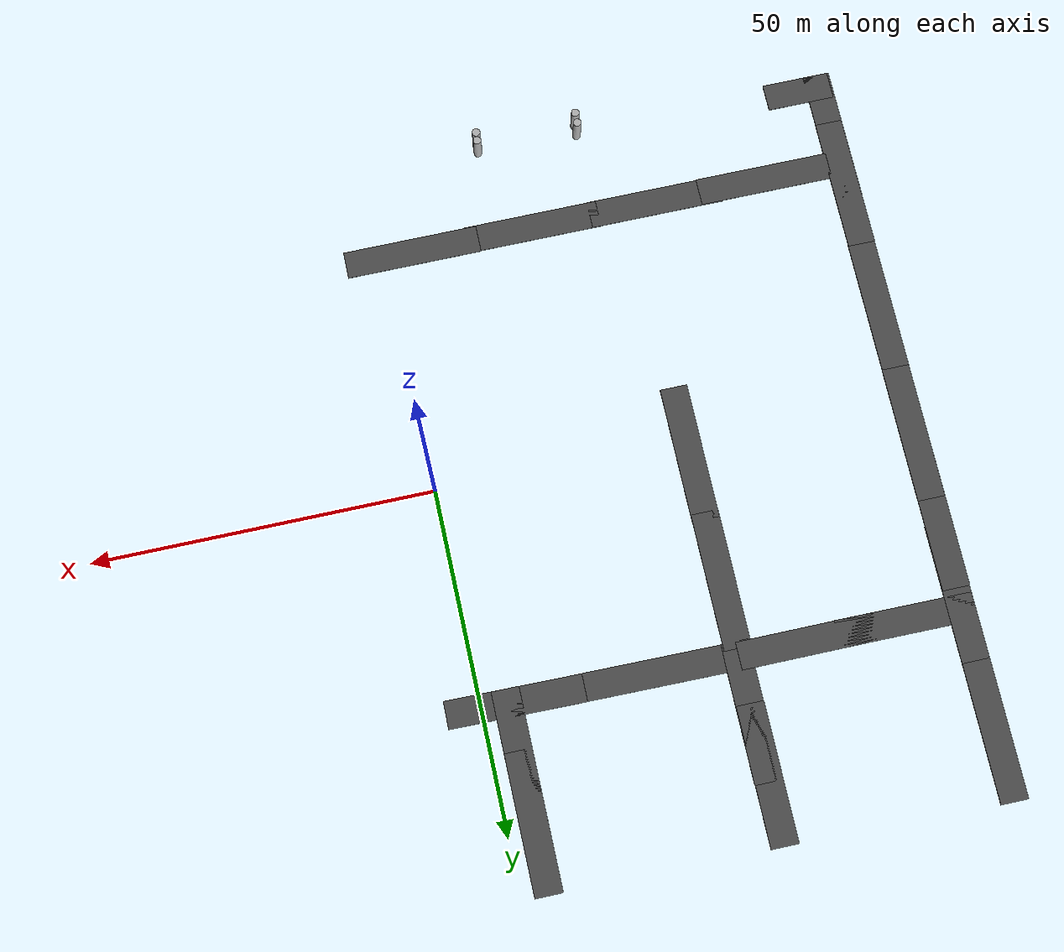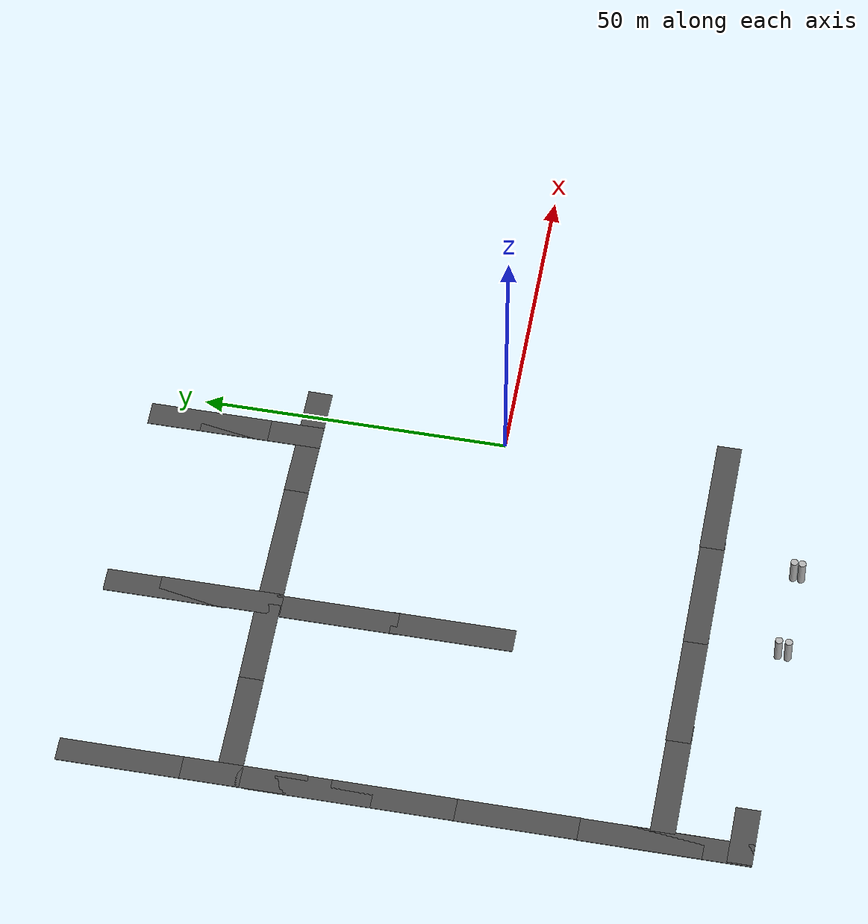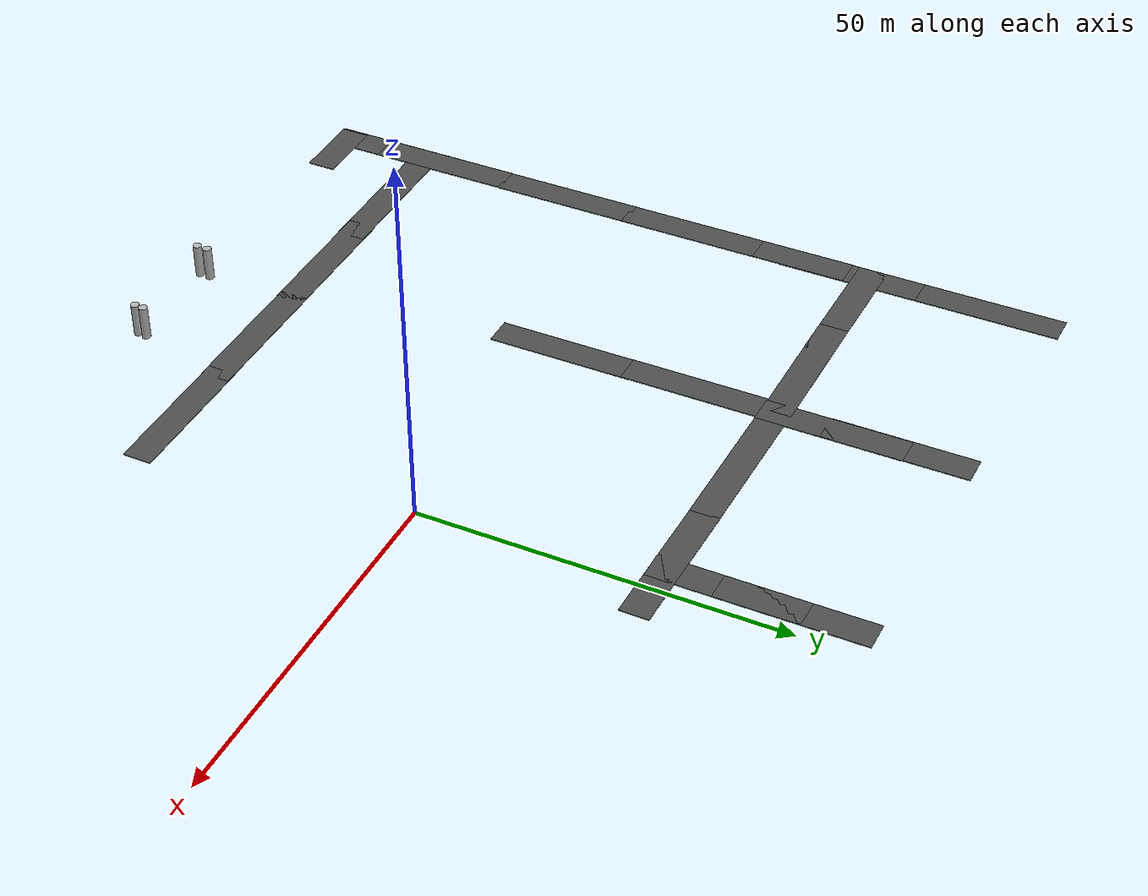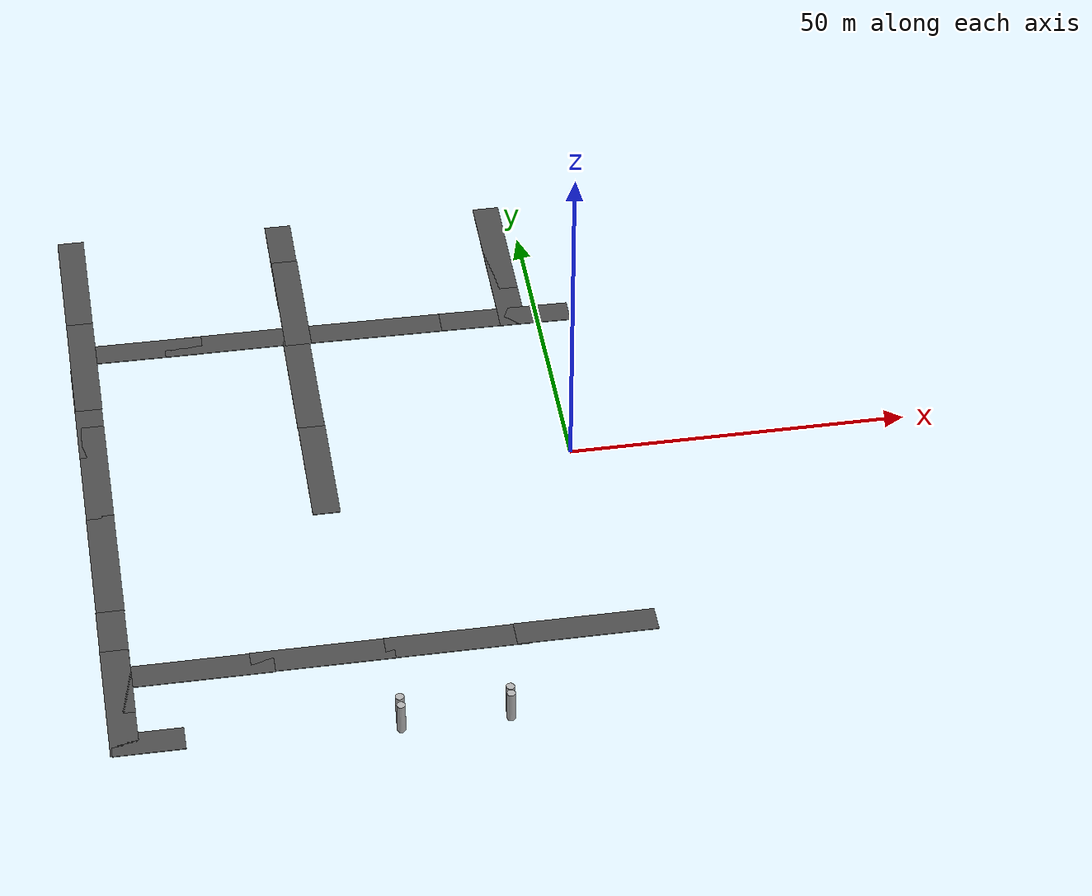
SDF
<sdf version="1.10">
 <world name="default">
  <model name="asphalt_plane_0">
   <static>true</static>
   <link name="link">
    <collision name="collision"><geometry><box><size>20 4 0.10000000000000001</size></box></geometry></collision>
    <visual name="visual">
     <cast_shadows>false</cast_shadows>
     <geometry><box><size>20 4 0.10000000000000001</size></box></geometry>
     <material>
      <script>
       <uri>https://fuel.gazebosim.org/1.0/openrobotics/models/asphalt plane/3/files/materials/scripts</uri>
       <uri>https://fuel.gazebosim.org/1.0/openrobotics/models/asphalt plane/3/files/materials/textures</uri>
       <name>vrc/asphalt</name>
      </script>
     </material>
    </visual>
    <inertial>
     <mass>1</mass>
     <inertia><ixx>1</ixx><ixy>0</ixy><ixz>0</ixz><iyy>1</iyy><iyz>0</iyz><izz>1</izz></inertia>
    </inertial>
   </link>
   <pose>-61.217483520507812 32.286003112792969 0.10000000000000001 0 0 -0.0062067301766573039</pose>
  </model>
  <model name="asphalt_plane_1">
   <static>true</static>
   <link name="link">
    <collision name="collision"><geometry><box><size>20 4 0.10000000000000001</size></box></geometry></collision>
    <visual name="visual">
     <cast_shadows>false</cast_shadows>
     <geometry><box><size>20 4 0.10000000000000001</size></box></geometry>
     <material>
      <script>
       <uri>https://fuel.gazebosim.org/1.0/openrobotics/models/asphalt plane/3/files/materials/scripts</uri>
       <uri>https://fuel.gazebosim.org/1.0/openrobotics/models/asphalt plane/3/files/materials/textures</uri>
       <name>vrc/asphalt</name>
      </script>
     </material>
    </visual>
    <inertial>
     <mass>1</mass>
     <inertia><ixx>1</ixx><ixy>0</ixy><ixz>0</ixz><iyy>1</iyy><iyz>0</iyz><izz>1</izz></inertia>
    </inertial>
   </link>
   <pose>-24.775899887084961 32.055500030517578 0.10000000000000001 0 0 -0.010615599618115659</pose>
  </model>
  <model name="asphalt_plane_2">
   <static>true</static>
   <link name="link">
    <collision name="collision"><geometry><box><size>20 4 0.10000000000000001</size></box></geometry></collision>
    <visual name="visual">
     <cast_shadows>false</cast_shadows>
     <geometry><box><size>20 4 0.10000000000000001</size></box></geometry>
     <material>
      <script>
       <uri>https://fuel.gazebosim.org/1.0/openrobotics/models/asphalt plane/3/files/materials/scripts</uri>
       <uri>https://fuel.gazebosim.org/1.0/openrobotics/models/asphalt plane/3/files/materials/textures</uri>
       <name>vrc/asphalt</name>
      </script>
     </material>
    </visual>
    <inertial>
     <mass>1</mass>
     <inertia><ixx>1</ixx><ixy>0</ixy><ixz>0</ixz><iyy>1</iyy><iyz>0</iyz><izz>1</izz></inertia>
    </inertial>
   </link>
   <pose>-5.0120377540588379 31.818853378295898 0.10000000000000001 0 0 -0.015387500146380951</pose>
  </model>
  <model name="asphalt_plane_7">
   <static>true</static>
   <link name="link">
    <collision name="collision"><geometry><box><size>4 20 0.10000000000000001</size></box></geometry></collision>
    <visual name="visual">
     <cast_shadows>false</cast_shadows>
     <geometry><box><size>4 20 0.10000000000000001</size></box></geometry>
     <material>
      <script>
       <uri>https://fuel.gazebosim.org/1.0/openrobotics/models/asphalt plane/3/files/materials/scripts</uri>
       <uri>https://fuel.gazebosim.org/1.0/openrobotics/models/asphalt plane/3/files/materials/textures</uri>
       <name>vrc/asphalt</name>
      </script>
     </material>
    </visual>
    <inertial>
     <mass>1</mass>
     <inertia><ixx>1</ixx><ixy>0</ixy><ixz>0</ixz><iyy>1</iyy><iyz>0</iyz><izz>1</izz></inertia>
    </inertial>
   </link>
   <pose>-36.754901885986328 40.108165740966797 0.10000000000000001 0 0 0</pose>
  </model>
  <model name="asphalt_plane_8">
   <static>true</static>
   <link name="link">
    <collision name="collision"><geometry><box><size>4 20 0.10000000000000001</size></box></geometry></collision>
    <visual name="visual">
     <cast_shadows>false</cast_shadows>
     <geometry><box><size>4 20 0.10000000000000001</size></box></geometry>
     <material>
      <script>
       <uri>https://fuel.gazebosim.org/1.0/openrobotics/models/asphalt plane/3/files/materials/scripts</uri>
       <uri>https://fuel.gazebosim.org/1.0/openrobotics/models/asphalt plane/3/files/materials/textures</uri>
       <name>vrc/asphalt</name>
      </script>
     </material>
    </visual>
    <inertial>
     <mass>1</mass>
     <inertia><ixx>1</ixx><ixy>0</ixy><ixz>0</ixz><iyy>1</iyy><iyz>0</iyz><izz>1</izz></inertia>
    </inertial>
   </link>
   <pose>-36.830970764160156 48.987098693847656 0.10000000000000001 0 0 0</pose>
  </model>
  <model name="asphalt_plane_9">
   <static>true</static>
   <link name="link">
    <collision name="collision"><geometry><box><size>4 20 0.10000000000000001</size></box></geometry></collision>
    <visual name="visual">
     <cast_shadows>false</cast_shadows>
     <geometry><box><size>4 20 0.10000000000000001</size></box></geometry>
     <material>
      <script>
       <uri>https://fuel.gazebosim.org/1.0/openrobotics/models/asphalt plane/3/files/materials/scripts</uri>
       <uri>https://fuel.gazebosim.org/1.0/openrobotics/models/asphalt plane/3/files/materials/textures</uri>
       <name>vrc/asphalt</name>
      </script>
     </material>
    </visual>
    <inertial>
     <mass>1</mass>
     <inertia><ixx>1</ixx><ixy>0</ixy><ixz>0</ixz><iyy>1</iyy><iyz>0</iyz><izz>1</izz></inertia>
    </inertial>
   </link>
   <pose>-69.2471923828125 29.912099838256836 0.10000000000000001 0 0 0</pose>
  </model>
  <model name="asphalt_plane_10">
   <static>true</static>
   <link name="link">
    <collision name="collision"><geometry><box><size>4 20 0.10000000000000001</size></box></geometry></collision>
    <visual name="visual">
     <cast_shadows>false</cast_shadows>
     <geometry><box><size>4 20 0.10000000000000001</size></box></geometry>
     <material>
      <script>
       <uri>https://fuel.gazebosim.org/1.0/openrobotics/models/asphalt plane/3/files/materials/scripts</uri>
       <uri>https://fuel.gazebosim.org/1.0/openrobotics/models/asphalt plane/3/files/materials/textures</uri>
       <name>vrc/asphalt</name>
      </script>
     </material>
    </visual>
    <inertial>
     <mass>1</mass>
     <inertia><ixx>1</ixx><ixy>0</ixy><ixz>0</ixz><iyy>1</iyy><iyz>0</iyz><izz>1</izz></inertia>
    </inertial>
   </link>
   <pose>-69.254173278808594 49.835899353027344 0.10000000000000001 0 0 0</pose>
  </model>
  <model name="asphalt_plane_11">
   <static>true</static>
   <link name="link">
    <collision name="collision"><geometry><box><size>4 20 0.10000000000000001</size></box></geometry></collision>
    <visual name="visual">
     <cast_shadows>false</cast_shadows>
     <geometry><box><size>4 20 0.10000000000000001</size></box></geometry>
     <material>
      <script>
       <uri>https://fuel.gazebosim.org/1.0/openrobotics/models/asphalt plane/3/files/materials/scripts</uri>
       <uri>https://fuel.gazebosim.org/1.0/openrobotics/models/asphalt plane/3/files/materials/textures</uri>
       <name>vrc/asphalt</name>
      </script>
     </material>
    </visual>
    <inertial>
     <mass>1</mass>
     <inertia><ixx>1</ixx><ixy>0</ixy><ixz>0</ixz><iyy>1</iyy><iyz>0</iyz><izz>1</izz></inertia>
    </inertial>
   </link>
   <pose>-3.8194301128387451 39.800125122070312 0.10000000000000001 0 0 0</pose>
  </model>
  <model name="asphalt_plane_12">
   <static>true</static>
   <link name="link">
    <collision name="collision"><geometry><box><size>4 20 0.10000000000000001</size></box></geometry></collision>
    <visual name="visual">
     <cast_shadows>false</cast_shadows>
     <geometry><box><size>4 20 0.10000000000000001</size></box></geometry>
     <material>
      <script>
       <uri>https://fuel.gazebosim.org/1.0/openrobotics/models/asphalt plane/3/files/materials/scripts</uri>
       <uri>https://fuel.gazebosim.org/1.0/openrobotics/models/asphalt plane/3/files/materials/textures</uri>
       <name>vrc/asphalt</name>
      </script>
     </material>
    </visual>
    <inertial>
     <mass>1</mass>
     <inertia><ixx>1</ixx><ixy>0</ixy><ixz>0</ixz><iyy>1</iyy><iyz>0</iyz><izz>1</izz></inertia>
    </inertial>
   </link>
   <pose>-3.8157851696014404 48.527198791503906 0.10000000000000001 0 0 0</pose>
  </model>
  <model name="asphalt_plane_19">
   <static>true</static>
   <link name="link">
    <collision name="collision"><geometry><box><size>4 20 0.10000000000000001</size></box></geometry></collision>
    <visual name="visual">
     <cast_shadows>false</cast_shadows>
     <geometry><box><size>4 20 0.10000000000000001</size></box></geometry>
     <material>
      <script>
       <uri>https://fuel.gazebosim.org/1.0/openrobotics/models/asphalt plane/3/files/materials/scripts</uri>
       <uri>https://fuel.gazebosim.org/1.0/openrobotics/models/asphalt plane/3/files/materials/textures</uri>
       <name>vrc/asphalt</name>
      </script>
     </material>
    </visual>
    <inertial>
     <mass>1</mass>
     <inertia><ixx>1</ixx><ixy>0</ixy><ixz>0</ixz><iyy>1</iyy><iyz>0</iyz><izz>1</izz></inertia>
    </inertial>
   </link>
   <pose>-69.308998107910156 6.0952801704406738 0.10000000000000001 0 0 0</pose>
  </model>
  <model name="asphalt_plane_20">
   <static>true</static>
   <link name="link">
    <collision name="collision"><geometry><box><size>4 20 0.10000000000000001</size></box></geometry></collision>
    <visual name="visual">
     <cast_shadows>false</cast_shadows>
     <geometry><box><size>4 20 0.10000000000000001</size></box></geometry>
     <material>
      <script>
       <uri>https://fuel.gazebosim.org/1.0/openrobotics/models/asphalt plane/3/files/materials/scripts</uri>
       <uri>https://fuel.gazebosim.org/1.0/openrobotics/models/asphalt plane/3/files/materials/textures</uri>
       <name>vrc/asphalt</name>
      </script>
     </material>
    </visual>
    <inertial>
     <mass>1</mass>
     <inertia><ixx>1</ixx><ixy>0</ixy><ixz>0</ixz><iyy>1</iyy><iyz>0</iyz><izz>1</izz></inertia>
    </inertial>
   </link>
   <pose>-69.332267761230469 -13.41919994354248 0.10000000000000001 0 0 0</pose>
  </model>
  <model name="asphalt_plane_21">
   <static>true</static>
   <link name="link">
    <collision name="collision"><geometry><box><size>4 20 0.10000000000000001</size></box></geometry></collision>
    <visual name="visual">
     <cast_shadows>false</cast_shadows>
     <geometry><box><size>4 20 0.10000000000000001</size></box></geometry>
     <material>
      <script>
       <uri>https://fuel.gazebosim.org/1.0/openrobotics/models/asphalt plane/3/files/materials/scripts</uri>
       <uri>https://fuel.gazebosim.org/1.0/openrobotics/models/asphalt plane/3/files/materials/textures</uri>
       <name>vrc/asphalt</name>
      </script>
     </material>
    </visual>
    <inertial>
     <mass>1</mass>
     <inertia><ixx>1</ixx><ixy>0</ixy><ixz>0</ixz><iyy>1</iyy><iyz>0</iyz><izz>1</izz></inertia>
    </inertial>
   </link>
   <pose>-69.383697509765625 -33.147899627685547 0.10000000000000001 0 0 0</pose>
  </model>
  <model name="asphalt_plane_22">
   <static>true</static>
   <link name="link">
    <collision name="collision"><geometry><box><size>4 20 0.10000000000000001</size></box></geometry></collision>
    <visual name="visual">
     <cast_shadows>false</cast_shadows>
     <geometry><box><size>4 20 0.10000000000000001</size></box></geometry>
     <material>
      <script>
       <uri>https://fuel.gazebosim.org/1.0/openrobotics/models/asphalt plane/3/files/materials/scripts</uri>
       <uri>https://fuel.gazebosim.org/1.0/openrobotics/models/asphalt plane/3/files/materials/textures</uri>
       <name>vrc/asphalt</name>
      </script>
     </material>
    </visual>
    <inertial>
     <mass>1</mass>
     <inertia><ixx>1</ixx><ixy>0</ixy><ixz>0</ixz><iyy>1</iyy><iyz>0</iyz><izz>1</izz></inertia>
    </inertial>
   </link>
   <pose>-69.411453247070312 -40.968101501464844 0.10000000000000001 0 0 0</pose>
  </model>
  <model name="asphalt_plane">
   <static>true</static>
   <link name="link">
    <collision name="collision"><geometry><box><size>20 4 0.10000000000000001</size></box></geometry></collision>
    <visual name="visual">
     <cast_shadows>false</cast_shadows>
     <geometry><box><size>20 4 0.10000000000000001</size></box></geometry>
     <material>
      <script>
       <uri>https://fuel.gazebosim.org/1.0/openrobotics/models/asphalt plane/3/files/materials/scripts</uri>
       <uri>https://fuel.gazebosim.org/1.0/openrobotics/models/asphalt plane/3/files/materials/textures</uri>
       <name>vrc/asphalt</name>
      </script>
     </material>
    </visual>
    <inertial>
     <mass>1</mass>
     <inertia><ixx>1</ixx><ixy>0</ixy><ixz>0</ixz><iyy>1</iyy><iyz>0</iyz><izz>1</izz></inertia>
    </inertial>
   </link>
   <pose>-46.877128637557007 32.255424064310205 0.10000000000000001 0 0 0</pose>
  </model>
  <model name="asphalt_plane_23">
   <static>true</static>
   <link name="link">
    <collision name="collision"><geometry><box><size>20 4 0.10000000000000001</size></box></geometry></collision>
    <visual name="visual">
     <cast_shadows>false</cast_shadows>
     <geometry><box><size>20 4 0.10000000000000001</size></box></geometry>
     <material>
      <script>
       <uri>https://fuel.gazebosim.org/1.0/openrobotics/models/asphalt plane/3/files/materials/scripts</uri>
       <uri>https://fuel.gazebosim.org/1.0/openrobotics/models/asphalt plane/3/files/materials/textures</uri>
       <name>vrc/asphalt</name>
      </script>
     </material>
    </visual>
    <inertial>
     <mass>1</mass>
     <inertia><ixx>1</ixx><ixy>0</ixy><ixz>0</ixz><iyy>1</iyy><iyz>0</iyz><izz>1</izz></inertia>
    </inertial>
   </link>
   <pose>-57.700267179701569 -36.420220784361767 0.10000000000000001 0 0 0</pose>
  </model>
  <model name="asphalt_plane_24">
   <static>true</static>
   <link name="link">
    <collision name="collision"><geometry><box><size>20 4 0.10000000000000001</size></box></geometry></collision>
    <visual name="visual">
     <cast_shadows>false</cast_shadows>
     <geometry><box><size>20 4 0.10000000000000001</size></box></geometry>
     <material>
      <script>
       <uri>https://fuel.gazebosim.org/1.0/openrobotics/models/asphalt plane/3/files/materials/scripts</uri>
       <uri>https://fuel.gazebosim.org/1.0/openrobotics/models/asphalt plane/3/files/materials/textures</uri>
       <name>vrc/asphalt</name>
      </script>
     </material>
    </visual>
    <inertial>
     <mass>1</mass>
     <inertia><ixx>1</ixx><ixy>0</ixy><ixz>0</ixz><iyy>1</iyy><iyz>0</iyz><izz>1</izz></inertia>
    </inertial>
   </link>
   <pose>-40.948898315429688 -36.324001312255859 0.10000000000000001 0 0 0</pose>
  </model>
  <model name="asphalt_plane_25">
   <static>true</static>
   <link name="link">
    <collision name="collision"><geometry><box><size>20 4 0.10000000000000001</size></box></geometry></collision>
    <visual name="visual">
     <cast_shadows>false</cast_shadows>
     <geometry><box><size>20 4 0.10000000000000001</size></box></geometry>
     <material>
      <script>
       <uri>https://fuel.gazebosim.org/1.0/openrobotics/models/asphalt plane/3/files/materials/scripts</uri>
       <uri>https://fuel.gazebosim.org/1.0/openrobotics/models/asphalt plane/3/files/materials/textures</uri>
       <name>vrc/asphalt</name>
      </script>
     </material>
    </visual>
    <inertial>
     <mass>1</mass>
     <inertia><ixx>1</ixx><ixy>0</ixy><ixz>0</ixz><iyy>1</iyy><iyz>0</iyz><izz>1</izz></inertia>
    </inertial>
   </link>
   <pose>-22.23546337860471 -36.288053687977403 0.10000000000000001 0 0 0</pose>
  </model>
  <model name="asphalt_plane_26">
   <static>true</static>
   <link name="link">
    <collision name="collision"><geometry><box><size>20 4 0.10000000000000001</size></box></geometry></collision>
    <visual name="visual">
     <cast_shadows>false</cast_shadows>
     <geometry><box><size>20 4 0.10000000000000001</size></box></geometry>
     <material>
      <script>
       <uri>https://fuel.gazebosim.org/1.0/openrobotics/models/asphalt plane/3/files/materials/scripts</uri>
       <uri>https://fuel.gazebosim.org/1.0/openrobotics/models/asphalt plane/3/files/materials/textures</uri>
       <name>vrc/asphalt</name>
      </script>
     </material>
    </visual>
    <inertial>
     <mass>1</mass>
     <inertia><ixx>1</ixx><ixy>0</ixy><ixz>0</ixz><iyy>1</iyy><iyz>0</iyz><izz>1</izz></inertia>
    </inertial>
   </link>
   <pose>-3.9713770335818666 -36.210481947376941 0.10000000000000001 0 0 0</pose>
  </model>
  <model name="cylinder">
   <pose>-31.945355764881889 -51.106174275102198 1.6229511881577721 5.3359638962113934e-08 -2.2102288329287507e-08 0.01493644159769133</pose>
   <link name="cylinder_link">
    <inertial>
     <inertia>
      <ixx>0.14580000000000001</ixx>
      <ixy>0</ixy>
      <ixz>0</ixz>
      <iyy>0.14580000000000001</iyy>
      <iyz>0</iyz>
      <izz>0.125</izz>
     </inertia>
     <mass>1</mass>
    </inertial>
    <collision name="cylinder_collision">
     <geometry><cylinder><radius>0.59999999999999998</radius><length>3</length></cylinder></geometry>
    </collision>
    <visual name="cylinder_visual">
     <geometry>
      <cylinder><radius>0.59999999999999998</radius><length>4.7999999999999998</length></cylinder>
     </geometry>
     <material>
      <ambient>0.300000012 0.300000012 0.300000012 1</ambient>
      <diffuse>0.699999988 0.699999988 0.699999988 1</diffuse>
      <specular>1 1 1 1</specular>
     </material>
    </visual>
   </link>
   <static>false</static>
  </model>
  <model name="cylinder_0">
   <pose>-31.894636796608236 -49.521862196188508 1.622951166286384 -2.0261294403959919e-08 -8.4292994939223137e-09 -0.026193496584815148</pose>
   <link name="cylinder_link">
    <inertial>
     <inertia>
      <ixx>0.14580000000000001</ixx>
      <ixy>0</ixy>
      <ixz>0</ixz>
      <iyy>0.14580000000000001</iyy>
      <iyz>0</iyz>
      <izz>0.125</izz>
     </inertia>
     <mass>1</mass>
    </inertial>
    <collision name="cylinder_collision">
     <geometry><cylinder><radius>0.59999999999999998</radius><length>3</length></cylinder></geometry>
    </collision>
    <visual name="cylinder_visual">
     <geometry>
      <cylinder><radius>0.59999999999999998</radius><length>4.7999999999999998</length></cylinder>
     </geometry>
     <material>
      <ambient>0.300000012 0.300000012 0.300000012 1</ambient>
      <diffuse>0.699999988 0.699999988 0.699999988 1</diffuse>
      <specular>1 1 1 1</specular>
     </material>
    </visual>
   </link>
   <static>false</static>
  </model>
  <model name="cylinder_1">
   <pose>-16.873616074582234 -51.171013976806968 1.6229511542479975 3.9936610906107616e-08 -8.6721580272902566e-08 0.0063640389164049084</pose>
   <link name="cylinder_link">
    <inertial>
     <inertia>
      <ixx>0.14580000000000001</ixx>
      <ixy>0</ixy>
      <ixz>0</ixz>
      <iyy>0.14580000000000001</iyy>
      <iyz>0</iyz>
      <izz>0.125</izz>
     </inertia>
     <mass>1</mass>
    </inertial>
    <collision name="cylinder_collision">
     <geometry><cylinder><radius>0.59999999999999998</radius><length>3</length></cylinder></geometry>
    </collision>
    <visual name="cylinder_visual">
     <geometry>
      <cylinder><radius>0.59999999999999998</radius><length>4.7999999999999998</length></cylinder>
     </geometry>
     <material>
      <ambient>0.300000012 0.300000012 0.300000012 1</ambient>
      <diffuse>0.699999988 0.699999988 0.699999988 1</diffuse>
      <specular>1 1 1 1</specular>
     </material>
    </visual>
   </link>
   <static>false</static>
  </model>
  <model name="cylinder_2">
   <pose>-16.785625991105992 -49.88261262129312 1.6229511443606641 7.3475981294437652e-08 3.044074514534766e-08 -0.010411271970932978</pose>
   <link name="cylinder_link">
    <inertial>
     <inertia>
      <ixx>0.14580000000000001</ixx>
      <ixy>0</ixy>
      <ixz>0</ixz>
      <iyy>0.14580000000000001</iyy>
      <iyz>0</iyz>
      <izz>0.125</izz>
     </inertia>
     <mass>1</mass>
    </inertial>
    <collision name="cylinder_collision">
     <geometry><cylinder><radius>0.59999999999999998</radius><length>3</length></cylinder></geometry>
    </collision>
    <visual name="cylinder_visual">
     <geometry>
      <cylinder><radius>0.59999999999999998</radius><length>4.7999999999999998</length></cylinder>
     </geometry>
     <material>
      <ambient>0.300000012 0.300000012 0.300000012 1</ambient>
      <diffuse>0.699999988 0.699999988 0.699999988 1</diffuse>
      <specular>1 1 1 1</specular>
     </material>
    </visual>
   </link>
   <static>false</static>
  </model>
  <model name="asphalt_plane_30">
   <static>true</static>
   <link name="link">
    <collision name="collision"><geometry><box><size>20 20 0.10000000000000001</size></box></geometry></collision>
    <visual name="visual">
     <cast_shadows>false</cast_shadows>
     <geometry><box><size>4 20 0.10000000000000001</size></box></geometry>
     <material>
      <script>
       <uri>https://fuel.gazebosim.org/1.0/openrobotics/models/asphalt plane/3/files/materials/scripts</uri>
       <uri>https://fuel.gazebosim.org/1.0/openrobotics/models/asphalt plane/3/files/materials/textures</uri>
       <name>vrc/asphalt</name>
      </script>
     </material>
    </visual>
    <inertial>
     <mass>1</mass>
     <inertia><ixx>1</ixx><ixy>0</ixy><ixz>0</ixz><iyy>1</iyy><iyz>0</iyz><izz>1</izz></inertia>
    </inertial>
   </link>
   <pose>-37.022344134098667 21.171242143334805 0.10000000000000001 0 0 0</pose>
  </model>
  <model name="asphalt_plane_31">
   <static>true</static>
   <link name="link">
    <collision name="collision"><geometry><box><size>4 20 0.10000000000000001</size></box></geometry></collision>
    <visual name="visual">
     <cast_shadows>false</cast_shadows>
     <geometry><box><size>4 20 0.10000000000000001</size></box></geometry>
     <material>
      <script>
       <uri>https://fuel.gazebosim.org/1.0/openrobotics/models/asphalt plane/3/files/materials/scripts</uri>
       <uri>https://fuel.gazebosim.org/1.0/openrobotics/models/asphalt plane/3/files/materials/textures</uri>
       <name>vrc/asphalt</name>
      </script>
     </material>
    </visual>
    <inertial>
     <mass>1</mass>
     <inertia><ixx>1</ixx><ixy>0</ixy><ixz>0</ixz><iyy>1</iyy><iyz>0</iyz><izz>1</izz></inertia>
    </inertial>
   </link>
   <pose>-36.973930358886719 2.2217600345611572 0.10000000000000001 0 0 0</pose>
  </model>
  <model name="asphalt_plane_36">
   <static>true</static>
   <link name="link">
    <collision name="collision"><geometry><box><size>4 20 0.10000000000000001</size></box></geometry></collision>
    <visual name="visual">
     <cast_shadows>false</cast_shadows>
     <geometry><box><size>4 20 0.10000000000000001</size></box></geometry>
     <material>
      <script>
       <uri>https://fuel.gazebosim.org/1.0/openrobotics/models/asphalt plane/3/files/materials/scripts</uri>
       <uri>https://fuel.gazebosim.org/1.0/openrobotics/models/asphalt plane/3/files/materials/textures</uri>
       <name>vrc/asphalt</name>
      </script>
     </material>
    </visual>
    <inertial>
     <mass>1</mass>
     <inertia><ixx>1</ixx><ixy>0</ixy><ixz>0</ixz><iyy>1</iyy><iyz>0</iyz><izz>1</izz></inertia>
    </inertial>
   </link>
   <pose>-69.319404602050781 19.384000778198242 0.10000000000000001 0 0 0</pose>
  </model>
  <model name="asphalt_plane_38">
   <static>true</static>
   <link name="link">
    <collision name="collision"><geometry><box><size>10 4 0.10000000000000001</size></box></geometry></collision>
    <visual name="visual">
     <cast_shadows>false</cast_shadows>
     <geometry><box><size>10 4 0.10000000000000001</size></box></geometry>
     <material>
      <script>
       <uri>https://fuel.gazebosim.org/1.0/openrobotics/models/asphalt plane/3/files/materials/scripts</uri>
       <uri>https://fuel.gazebosim.org/1.0/openrobotics/models/asphalt plane/3/files/materials/textures</uri>
       <name>vrc/asphalt</name>
      </script>
     </material>
    </visual>
    <inertial>
     <mass>1</mass>
     <inertia><ixx>1</ixx><ixy>0</ixy><ixz>0</ixz><iyy>1</iyy><iyz>0</iyz><izz>1</izz></inertia>
    </inertial>
   </link>
   <pose>-66.172256469726562 -49.031898498535156 0.10000000000000001 0 0 0</pose>
  </model>
 </world>
</sdf>
